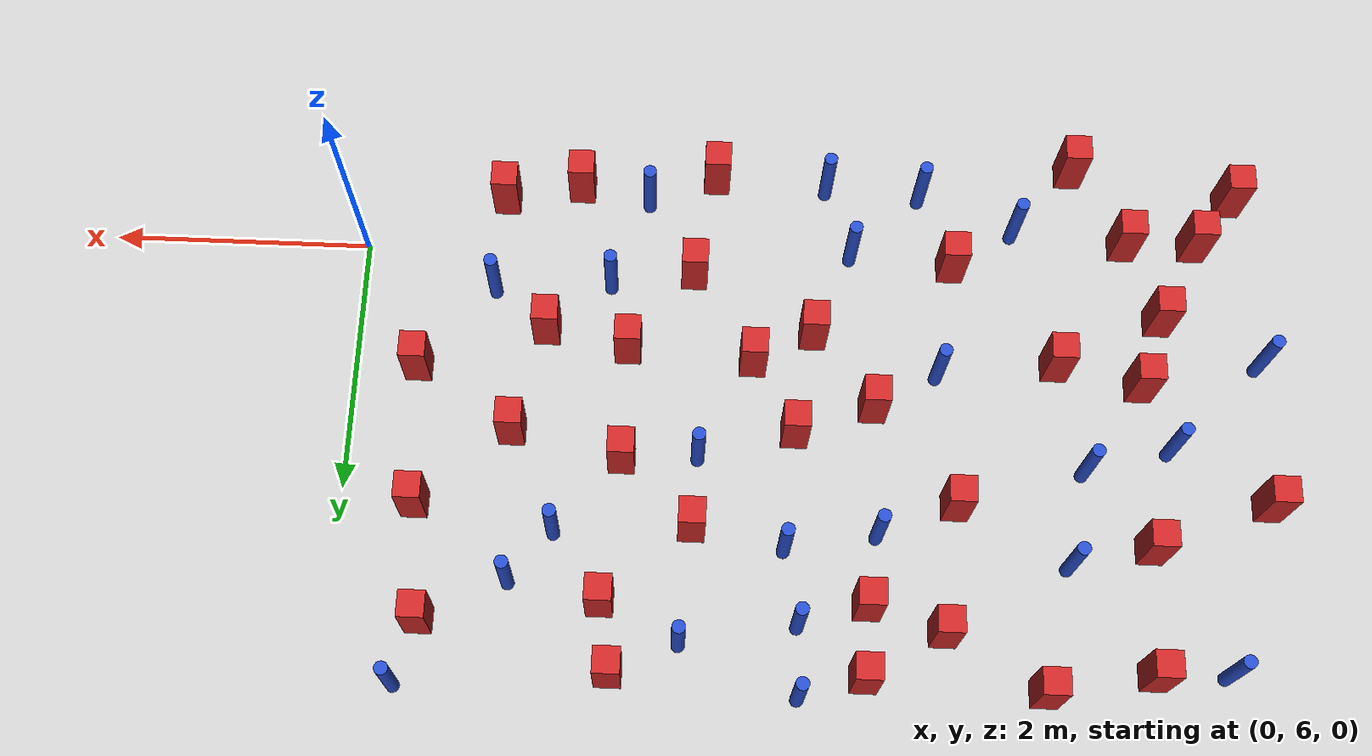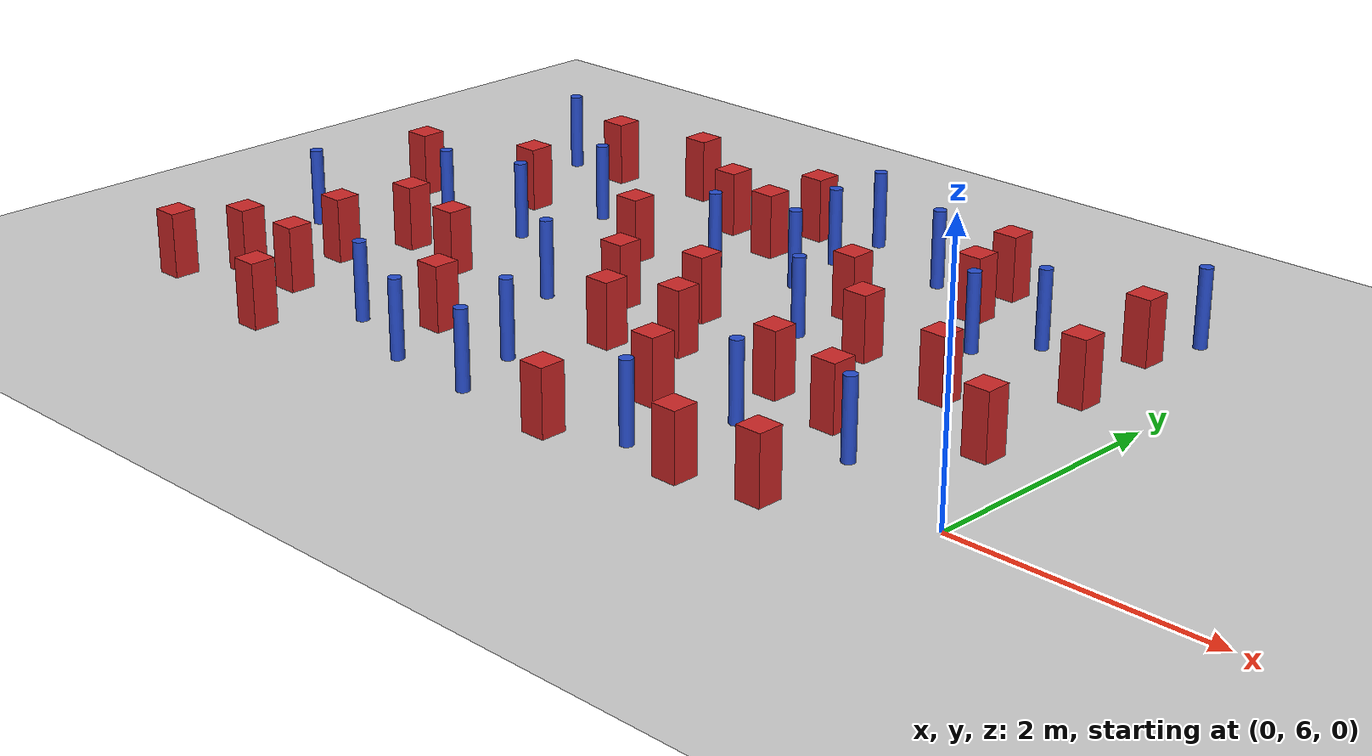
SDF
<sdf version="1.6">
 <world name="default">
  <model name="ground_plane">
   <static>1</static>
   <link name="link">
    <collision name="collision">
     <geometry><plane><normal>0 0 1</normal><size>100 100</size></plane></geometry>
     <surface><friction><ode><mu>100</mu><mu2>50</mu2></ode></friction></surface>
    </collision>
    <visual name="visual">
     <cast_shadows>0</cast_shadows>
     <geometry><plane><normal>0 0 1</normal><size>100 100</size></plane></geometry>
     <material>
      <ambient>1.0 1.0 1.0 1.0</ambient>
      <diffuse>0.8 0.8 0.8 1.0</diffuse>
      <specular>0.01 0.01 0.01 1.000000</specular>
     </material>
    </visual>
   </link>
  </model>
  <model name="square_post_obstacle1">
   <static>true</static>
   <pose>-3.93101011616 8.76190546787 -6.11067671241e-07 -5.50515727128e-06 -8.79689657224e-07 2.37013304536e-05</pose>
   <link name="link">
    <pose>0 0 0.25 0 -0 0</pose>
    <inertial>
     <mass>100</mass>
     <inertia>
      <ixx>0.166667</ixx>
      <ixy>0</ixy>
      <ixz>0</ixz>
      <iyy>0.166667</iyy>
      <iyz>0</iyz>
      <izz>0.166667</izz>
     </inertia>
    </inertial>
    <collision name="collision"><geometry><box><size>.2 .2 .5</size></box></geometry></collision>
    <visual name="visual">
     <geometry><box><size>.2 .2 .5</size></box></geometry>
     <material>
      <script><name>Gazebo/Red</name><uri>file://media/materials/scripts/gazebo.material</uri></script>
     </material>
    </visual>
   </link>
  </model>
  <model name="pole_obstacle9">
   <static>true</static>
   <pose>-3.79374008691 5.95631471667 -9.47619616065e-06 5.49618799738e-07 2.3631041406e-07 -1.55090534801e-07</pose>
   <link name="link">
    <pose>0 0 0.3 0 -0 0</pose>
    <inertial>
     <mass>1</mass>
     <inertia><ixx>0.145833</ixx><ixy>0</ixy><ixz>0</ixz><iyy>0.145833</iyy><iyz>0</iyz><izz>0.125</izz></inertia>
    </inertial>
    <collision name="collision">
     <geometry><cylinder><radius>0.05</radius><length>.6</length></cylinder></geometry>
    </collision>
    <visual name="visual">
     <geometry><cylinder><radius>0.05</radius><length>.6</length></cylinder></geometry>
     <material>
      <script><name>Gazebo/Blue</name><uri>file://media/materials/scripts/gazebo.material</uri></script>
     </material>
    </visual>
   </link>
  </model>
  <model name="square_post_obstacle15">
   <static>true</static>
   <pose>-2.06721331469 9.33534077176 -6.11067671241e-07 -5.50515727128e-06 -8.79689657224e-07 2.37013304536e-05</pose>
   <link name="link">
    <pose>0 0 0.25 0 -0 0</pose>
    <inertial>
     <mass>100</mass>
     <inertia>
      <ixx>0.166667</ixx>
      <ixy>0</ixy>
      <ixz>0</ixz>
      <iyy>0.166667</iyy>
      <iyz>0</iyz>
      <izz>0.166667</izz>
     </inertia>
    </inertial>
    <collision name="collision"><geometry><box><size>.2 .2 .5</size></box></geometry></collision>
    <visual name="visual">
     <geometry><box><size>.2 .2 .5</size></box></geometry>
     <material>
      <script><name>Gazebo/Red</name><uri>file://media/materials/scripts/gazebo.material</uri></script>
     </material>
    </visual>
   </link>
  </model>
  <model name="pole_obstacle34">
   <static>true</static>
   <pose>-1.29527328538 8.6920325481 -9.47619616065e-06 5.49618799737e-07 2.36310414046e-07 -1.55090534809e-07</pose>
   <link name="link">
    <pose>0 0 0.3 0 -0 0</pose>
    <inertial>
     <mass>1</mass>
     <inertia><ixx>0.145833</ixx><ixy>0</ixy><ixz>0</ixz><iyy>0.145833</iyy><iyz>0</iyz><izz>0.125</izz></inertia>
    </inertial>
    <collision name="collision">
     <geometry><cylinder><radius>0.05</radius><length>.6</length></cylinder></geometry>
    </collision>
    <visual name="visual">
     <geometry><cylinder><radius>0.05</radius><length>.6</length></cylinder></geometry>
     <material>
      <script><name>Gazebo/Blue</name><uri>file://media/materials/scripts/gazebo.material</uri></script>
     </material>
    </visual>
   </link>
  </model>
  <model name="square_post_obstacle29">
   <static>true</static>
   <pose>-3.5091988343 6.63039415746 -6.11067671241e-07 -5.50515727128e-06 -8.79689657224e-07 2.37013304536e-05</pose>
   <link name="link">
    <pose>0 0 0.25 0 -0 0</pose>
    <inertial>
     <mass>100</mass>
     <inertia>
      <ixx>0.166667</ixx>
      <ixy>0</ixy>
      <ixz>0</ixz>
      <iyy>0.166667</iyy>
      <iyz>0</iyz>
      <izz>0.166667</izz>
     </inertia>
    </inertial>
    <collision name="collision"><geometry><box><size>.2 .2 .5</size></box></geometry></collision>
    <visual name="visual">
     <geometry><box><size>.2 .2 .5</size></box></geometry>
     <material>
      <script><name>Gazebo/Red</name><uri>file://media/materials/scripts/gazebo.material</uri></script>
     </material>
    </visual>
   </link>
  </model>
  <model name="pole_obstacle40">
   <static>true</static>
   <pose>-6.19935487304 7.48095429086 -9.47619616065e-06 5.49618799737e-07 2.36310414037e-07 -1.55090534814e-07</pose>
   <link name="link">
    <pose>0 0 0.3 0 -0 0</pose>
    <inertial>
     <mass>1</mass>
     <inertia><ixx>0.145833</ixx><ixy>0</ixy><ixz>0</ixz><iyy>0.145833</iyy><iyz>0</iyz><izz>0.125</izz></inertia>
    </inertial>
    <collision name="collision">
     <geometry><cylinder><radius>0.05</radius><length>.6</length></cylinder></geometry>
    </collision>
    <visual name="visual">
     <geometry><cylinder><radius>0.05</radius><length>.6</length></cylinder></geometry>
     <material>
      <script><name>Gazebo/Blue</name><uri>file://media/materials/scripts/gazebo.material</uri></script>
     </material>
    </visual>
   </link>
  </model>
  <model name="pole_obstacle47">
   <static>true</static>
   <pose>-2.56440999447 9.10536468596 -9.4761961606e-06 5.49618799729e-07 2.36310414e-07 -1.55090534824e-07</pose>
   <link name="link">
    <pose>0 0 0.3 0 -0 0</pose>
    <inertial>
     <mass>1</mass>
     <inertia><ixx>0.145833</ixx><ixy>0</ixy><ixz>0</ixz><iyy>0.145833</iyy><iyz>0</iyz><izz>0.125</izz></inertia>
    </inertial>
    <collision name="collision">
     <geometry><cylinder><radius>0.05</radius><length>.6</length></cylinder></geometry>
    </collision>
    <visual name="visual">
     <geometry><cylinder><radius>0.05</radius><length>.6</length></cylinder></geometry>
     <material>
      <script><name>Gazebo/Blue</name><uri>file://media/materials/scripts/gazebo.material</uri></script>
     </material>
    </visual>
   </link>
  </model>
  <model name="square_post_obstacle39">
   <static>true</static>
   <pose>-6.79078821877 5.34065064978 -6.11067671241e-07 -5.50515727128e-06 -8.79689657224e-07 2.37013304536e-05</pose>
   <link name="link">
    <pose>0 0 0.25 0 -0 0</pose>
    <inertial>
     <mass>100</mass>
     <inertia>
      <ixx>0.166667</ixx>
      <ixy>0</ixy>
      <ixz>0</ixz>
      <iyy>0.166667</iyy>
      <iyz>0</iyz>
      <izz>0.166667</izz>
     </inertia>
    </inertial>
    <collision name="collision"><geometry><box><size>.2 .2 .5</size></box></geometry></collision>
    <visual name="visual">
     <geometry><box><size>.2 .2 .5</size></box></geometry>
     <material>
      <script><name>Gazebo/Red</name><uri>file://media/materials/scripts/gazebo.material</uri></script>
     </material>
    </visual>
   </link>
  </model>
  <model name="pole_obstacle51">
   <static>true</static>
   <pose>-1.60656359076 8.29880963765 -9.47619616065e-06 5.49618799737e-07 2.36310414046e-07 -1.55090534809e-07</pose>
   <link name="link">
    <pose>0 0 0.3 0 -0 0</pose>
    <inertial>
     <mass>1</mass>
     <inertia><ixx>0.145833</ixx><ixy>0</ixy><ixz>0</ixz><iyy>0.145833</iyy><iyz>0</iyz><izz>0.125</izz></inertia>
    </inertial>
    <collision name="collision">
     <geometry><cylinder><radius>0.05</radius><length>.6</length></cylinder></geometry>
    </collision>
    <visual name="visual">
     <geometry><cylinder><radius>0.05</radius><length>.6</length></cylinder></geometry>
     <material>
      <script><name>Gazebo/Blue</name><uri>file://media/materials/scripts/gazebo.material</uri></script>
     </material>
    </visual>
   </link>
  </model>
  <model name="pole_obstacle60">
   <static>true</static>
   <pose>-3.59758957852 5.37886061155 -9.4761961606e-06 5.49618799729e-07 2.36310414006e-07 -1.55090534822e-07</pose>
   <link name="link">
    <pose>0 0 0.3 0 -0 0</pose>
    <inertial>
     <mass>1</mass>
     <inertia><ixx>0.145833</ixx><ixy>0</ixy><ixz>0</ixz><iyy>0.145833</iyy><iyz>0</iyz><izz>0.125</izz></inertia>
    </inertial>
    <collision name="collision">
     <geometry><cylinder><radius>0.05</radius><length>.6</length></cylinder></geometry>
    </collision>
    <visual name="visual">
     <geometry><cylinder><radius>0.05</radius><length>.6</length></cylinder></geometry>
     <material>
      <script><name>Gazebo/Blue</name><uri>file://media/materials/scripts/gazebo.material</uri></script>
     </material>
    </visual>
   </link>
  </model>
  <model name="pole_obstacle61">
   <static>true</static>
   <pose>-0.523843270553 9.48377676943 -9.47619616065e-06 5.49618799737e-07 2.36310414028e-07 -1.55090534819e-07</pose>
   <link name="link">
    <pose>0 0 0.3 0 -0 0</pose>
    <inertial>
     <mass>1</mass>
     <inertia><ixx>0.145833</ixx><ixy>0</ixy><ixz>0</ixz><iyy>0.145833</iyy><iyz>0</iyz><izz>0.125</izz></inertia>
    </inertial>
    <collision name="collision">
     <geometry><cylinder><radius>0.05</radius><length>.6</length></cylinder></geometry>
    </collision>
    <visual name="visual">
     <geometry><cylinder><radius>0.05</radius><length>.6</length></cylinder></geometry>
     <material>
      <script><name>Gazebo/Blue</name><uri>file://media/materials/scripts/gazebo.material</uri></script>
     </material>
    </visual>
   </link>
  </model>
  <model name="square_post_obstacle49">
   <static>true</static>
   <pose>-2.73124747361 5.31073163933 -6.11067671241e-07 -5.50515727128e-06 -8.79689657224e-07 2.37013304536e-05</pose>
   <link name="link">
    <pose>0 0 0.25 0 -0 0</pose>
    <inertial>
     <mass>100</mass>
     <inertia>
      <ixx>0.166667</ixx>
      <ixy>0</ixy>
      <ixz>0</ixz>
      <iyy>0.166667</iyy>
      <iyz>0</iyz>
      <izz>0.166667</izz>
     </inertia>
    </inertial>
    <collision name="collision"><geometry><box><size>.2 .2 .5</size></box></geometry></collision>
    <visual name="visual">
     <geometry><box><size>.2 .2 .5</size></box></geometry>
     <material>
      <script><name>Gazebo/Red</name><uri>file://media/materials/scripts/gazebo.material</uri></script>
     </material>
    </visual>
   </link>
  </model>
  <model name="pole_obstacle63">
   <static>true</static>
   <pose>-6.91607063551 6.76198697087 -9.47619616065e-06 5.49618799737e-07 2.36310414037e-07 -1.55090534814e-07</pose>
   <link name="link">
    <pose>0 0 0.3 0 -0 0</pose>
    <inertial>
     <mass>1</mass>
     <inertia><ixx>0.145833</ixx><ixy>0</ixy><ixz>0</ixz><iyy>0.145833</iyy><iyz>0</iyz><izz>0.125</izz></inertia>
    </inertial>
    <collision name="collision">
     <geometry><cylinder><radius>0.05</radius><length>.6</length></cylinder></geometry>
    </collision>
    <visual name="visual">
     <geometry><cylinder><radius>0.05</radius><length>.6</length></cylinder></geometry>
     <material>
      <script><name>Gazebo/Blue</name><uri>file://media/materials/scripts/gazebo.material</uri></script>
     </material>
    </visual>
   </link>
  </model>
  <model name="square_post_obstacle62">
   <static>true</static>
   <pose>-6.91965950581 7.87558948765 -6.11067671241e-07 -5.50515727128e-06 -8.79689657224e-07 2.37013304536e-05</pose>
   <link name="link">
    <pose>0 0 0.25 0 -0 0</pose>
    <inertial>
     <mass>100</mass>
     <inertia>
      <ixx>0.166667</ixx>
      <ixy>0</ixy>
      <ixz>0</ixz>
      <iyy>0.166667</iyy>
      <iyz>0</iyz>
      <izz>0.166667</izz>
     </inertia>
    </inertial>
    <collision name="collision"><geometry><box><size>.2 .2 .5</size></box></geometry></collision>
    <visual name="visual">
     <geometry><box><size>.2 .2 .5</size></box></geometry>
     <material>
      <script><name>Gazebo/Red</name><uri>file://media/materials/scripts/gazebo.material</uri></script>
     </material>
    </visual>
   </link>
  </model>
  <model name="square_post_obstacle63">
   <static>true</static>
   <pose>-2.08791120888 7.70321835026 -6.11067671241e-07 -5.50515727128e-06 -8.79689657224e-07 2.37013304536e-05</pose>
   <link name="link">
    <pose>0 0 0.25 0 -0 0</pose>
    <inertial>
     <mass>100</mass>
     <inertia>
      <ixx>0.166667</ixx>
      <ixy>0</ixy>
      <ixz>0</ixz>
      <iyy>0.166667</iyy>
      <iyz>0</iyz>
      <izz>0.166667</izz>
     </inertia>
    </inertial>
    <collision name="collision"><geometry><box><size>.2 .2 .5</size></box></geometry></collision>
    <visual name="visual">
     <geometry><box><size>.2 .2 .5</size></box></geometry>
     <material>
      <script><name>Gazebo/Red</name><uri>file://media/materials/scripts/gazebo.material</uri></script>
     </material>
    </visual>
   </link>
  </model>
  <model name="pole_obstacle75">
   <static>true</static>
   <pose>-5.06561801735 5.70511838467 -9.47619616065e-06 5.49618799737e-07 2.36310414037e-07 -1.55090534814e-07</pose>
   <link name="link">
    <pose>0 0 0.3 0 -0 0</pose>
    <inertial>
     <mass>1</mass>
     <inertia><ixx>0.145833</ixx><ixy>0</ixy><ixz>0</ixz><iyy>0.145833</iyy><iyz>0</iyz><izz>0.125</izz></inertia>
    </inertial>
    <collision name="collision">
     <geometry><cylinder><radius>0.05</radius><length>.6</length></cylinder></geometry>
    </collision>
    <visual name="visual">
     <geometry><cylinder><radius>0.05</radius><length>.6</length></cylinder></geometry>
     <material>
      <script><name>Gazebo/Blue</name><uri>file://media/materials/scripts/gazebo.material</uri></script>
     </material>
    </visual>
   </link>
  </model>
  <model name="pole_obstacle76">
   <static>true</static>
   <pose>-4.45757789082 6.93720662528 -9.47619616065e-06 5.49618799737e-07 2.36310414037e-07 -1.55090534814e-07</pose>
   <link name="link">
    <pose>0 0 0.3 0 -0 0</pose>
    <inertial>
     <mass>1</mass>
     <inertia><ixx>0.145833</ixx><ixy>0</ixy><ixz>0</ixz><iyy>0.145833</iyy><iyz>0</iyz><izz>0.125</izz></inertia>
    </inertial>
    <collision name="collision">
     <geometry><cylinder><radius>0.05</radius><length>.6</length></cylinder></geometry>
    </collision>
    <visual name="visual">
     <geometry><cylinder><radius>0.05</radius><length>.6</length></cylinder></geometry>
     <material>
      <script><name>Gazebo/Blue</name><uri>file://media/materials/scripts/gazebo.material</uri></script>
     </material>
    </visual>
   </link>
  </model>
  <model name="pole_obstacle78">
   <static>true</static>
   <pose>-4.33369580763 5.42312579142 -9.47619616065e-06 5.49618799737e-07 2.36310414037e-07 -1.55090534814e-07</pose>
   <link name="link">
    <pose>0 0 0.3 0 -0 0</pose>
    <inertial>
     <mass>1</mass>
     <inertia><ixx>0.145833</ixx><ixy>0</ixy><ixz>0</ixz><iyy>0.145833</iyy><iyz>0</iyz><izz>0.125</izz></inertia>
    </inertial>
    <collision name="collision">
     <geometry><cylinder><radius>0.05</radius><length>.6</length></cylinder></geometry>
    </collision>
    <visual name="visual">
     <geometry><cylinder><radius>0.05</radius><length>.6</length></cylinder></geometry>
     <material>
      <script><name>Gazebo/Blue</name><uri>file://media/materials/scripts/gazebo.material</uri></script>
     </material>
    </visual>
   </link>
  </model>
  <model name="pole_obstacle80">
   <static>true</static>
   <pose>-2.65790835532 7.67264745156 -9.47619616065e-06 5.49618799738e-07 2.3631041406e-07 -1.55090534801e-07</pose>
   <link name="link">
    <pose>0 0 0.3 0 -0 0</pose>
    <inertial>
     <mass>1</mass>
     <inertia><ixx>0.145833</ixx><ixy>0</ixy><ixz>0</ixz><iyy>0.145833</iyy><iyz>0</iyz><izz>0.125</izz></inertia>
    </inertial>
    <collision name="collision">
     <geometry><cylinder><radius>0.05</radius><length>.6</length></cylinder></geometry>
    </collision>
    <visual name="visual">
     <geometry><cylinder><radius>0.05</radius><length>.6</length></cylinder></geometry>
     <material>
      <script><name>Gazebo/Blue</name><uri>file://media/materials/scripts/gazebo.material</uri></script>
     </material>
    </visual>
   </link>
  </model>
  <model name="pole_obstacle89">
   <static>true</static>
   <pose>-4.00031937842 8.23350062503 -9.47619616065e-06 5.49618799737e-07 2.36310414065e-07 -1.55090534796e-07</pose>
   <link name="link">
    <pose>0 0 0.3 0 -0 0</pose>
    <inertial>
     <mass>1</mass>
     <inertia><ixx>0.145833</ixx><ixy>0</ixy><ixz>0</ixz><iyy>0.145833</iyy><iyz>0</iyz><izz>0.125</izz></inertia>
    </inertial>
    <collision name="collision">
     <geometry><cylinder><radius>0.05</radius><length>.6</length></cylinder></geometry>
    </collision>
    <visual name="visual">
     <geometry><cylinder><radius>0.05</radius><length>.6</length></cylinder></geometry>
     <material>
      <script><name>Gazebo/Blue</name><uri>file://media/materials/scripts/gazebo.material</uri></script>
     </material>
    </visual>
   </link>
  </model>
  <model name="square_post_obstacle84">
   <static>true</static>
   <pose>-6.48567346125 5.75032184256 -6.11067671241e-07 -5.50515727128e-06 -8.79689657224e-07 2.37013304536e-05</pose>
   <link name="link">
    <pose>0 0 0.25 0 -0 0</pose>
    <inertial>
     <mass>100</mass>
     <inertia>
      <ixx>0.166667</ixx>
      <ixy>0</ixy>
      <ixz>0</ixz>
      <iyy>0.166667</iyy>
      <iyz>0</iyz>
      <izz>0.166667</izz>
     </inertia>
    </inertial>
    <collision name="collision"><geometry><box><size>.2 .2 .5</size></box></geometry></collision>
    <visual name="visual">
     <geometry><box><size>.2 .2 .5</size></box></geometry>
     <material>
      <script><name>Gazebo/Red</name><uri>file://media/materials/scripts/gazebo.material</uri></script>
     </material>
    </visual>
   </link>
  </model>
  <model name="square_post_obstacle89">
   <static>true</static>
   <pose>-2.6293624798 8.2164045874 -6.11067671241e-07 -5.50515727128e-06 -8.79689657224e-07 2.37013304536e-05</pose>
   <link name="link">
    <pose>0 0 0.25 0 -0 0</pose>
    <inertial>
     <mass>100</mass>
     <inertia>
      <ixx>0.166667</ixx>
      <ixy>0</ixy>
      <ixz>0</ixz>
      <iyy>0.166667</iyy>
      <iyz>0</iyz>
      <izz>0.166667</izz>
     </inertia>
    </inertial>
    <collision name="collision"><geometry><box><size>.2 .2 .5</size></box></geometry></collision>
    <visual name="visual">
     <geometry><box><size>.2 .2 .5</size></box></geometry>
     <material>
      <script><name>Gazebo/Red</name><uri>file://media/materials/scripts/gazebo.material</uri></script>
     </material>
    </visual>
   </link>
  </model>
  <model name="square_post_obstacle98">
   <static>true</static>
   <pose>-4.48244091897 8.93773082074 -6.11067671241e-07 -5.50515727128e-06 -8.79689657224e-07 2.37013304536e-05</pose>
   <link name="link">
    <pose>0 0 0.25 0 -0 0</pose>
    <inertial>
     <mass>100</mass>
     <inertia>
      <ixx>0.166667</ixx>
      <ixy>0</ixy>
      <ixz>0</ixz>
      <iyy>0.166667</iyy>
      <iyz>0</iyz>
      <izz>0.166667</izz>
     </inertia>
    </inertial>
    <collision name="collision"><geometry><box><size>.2 .2 .5</size></box></geometry></collision>
    <visual name="visual">
     <geometry><box><size>.2 .2 .5</size></box></geometry>
     <material>
      <script><name>Gazebo/Red</name><uri>file://media/materials/scripts/gazebo.material</uri></script>
     </material>
    </visual>
   </link>
  </model>
  <model name="square_post_obstacle101">
   <static>true</static>
   <pose>-6.0249009246 8.24527640478 -6.11067671241e-07 -5.50515727128e-06 -8.79689657224e-07 2.37013304536e-05</pose>
   <link name="link">
    <pose>0 0 0.25 0 -0 0</pose>
    <inertial>
     <mass>100</mass>
     <inertia>
      <ixx>0.166667</ixx>
      <ixy>0</ixy>
      <ixz>0</ixz>
      <iyy>0.166667</iyy>
      <iyz>0</iyz>
      <izz>0.166667</izz>
     </inertia>
    </inertial>
    <collision name="collision"><geometry><box><size>.2 .2 .5</size></box></geometry></collision>
    <visual name="visual">
     <geometry><box><size>.2 .2 .5</size></box></geometry>
     <material>
      <script><name>Gazebo/Red</name><uri>file://media/materials/scripts/gazebo.material</uri></script>
     </material>
    </visual>
   </link>
  </model>
  <model name="square_post_obstacle102">
   <static>true</static>
   <pose>-1.46179817074 6.67234186855 -6.11067671241e-07 -5.50515727128e-06 -8.79689657224e-07 2.37013304536e-05</pose>
   <link name="link">
    <pose>0 0 0.25 0 -0 0</pose>
    <inertial>
     <mass>100</mass>
     <inertia>
      <ixx>0.166667</ixx>
      <ixy>0</ixy>
      <ixz>0</ixz>
      <iyy>0.166667</iyy>
      <iyz>0</iyz>
      <izz>0.166667</izz>
     </inertia>
    </inertial>
    <collision name="collision"><geometry><box><size>.2 .2 .5</size></box></geometry></collision>
    <visual name="visual">
     <geometry><box><size>.2 .2 .5</size></box></geometry>
     <material>
      <script><name>Gazebo/Red</name><uri>file://media/materials/scripts/gazebo.material</uri></script>
     </material>
    </visual>
   </link>
  </model>
  <model name="pole_obstacle109">
   <static>true</static>
   <pose>-5.40837130879 8.41540186259 -9.47619616065e-06 5.49618799737e-07 2.36310414065e-07 -1.55090534796e-07</pose>
   <link name="link">
    <pose>0 0 0.3 0 -0 0</pose>
    <inertial>
     <mass>1</mass>
     <inertia><ixx>0.145833</ixx><ixy>0</ixy><ixz>0</ixz><iyy>0.145833</iyy><iyz>0</iyz><izz>0.125</izz></inertia>
    </inertial>
    <collision name="collision">
     <geometry><cylinder><radius>0.05</radius><length>.6</length></cylinder></geometry>
    </collision>
    <visual name="visual">
     <geometry><cylinder><radius>0.05</radius><length>.6</length></cylinder></geometry>
     <material>
      <script><name>Gazebo/Blue</name><uri>file://media/materials/scripts/gazebo.material</uri></script>
     </material>
    </visual>
   </link>
  </model>
  <model name="square_post_obstacle108">
   <static>true</static>
   <pose>-3.38045916165 7.44335587176 -6.11067671241e-07 -5.50515727128e-06 -8.79689657224e-07 2.37013304536e-05</pose>
   <link name="link">
    <pose>0 0 0.25 0 -0 0</pose>
    <inertial>
     <mass>100</mass>
     <inertia>
      <ixx>0.166667</ixx>
      <ixy>0</ixy>
      <ixz>0</ixz>
      <iyy>0.166667</iyy>
      <iyz>0</iyz>
      <izz>0.166667</izz>
     </inertia>
    </inertial>
    <collision name="collision"><geometry><box><size>.2 .2 .5</size></box></geometry></collision>
    <visual name="visual">
     <geometry><box><size>.2 .2 .5</size></box></geometry>
     <material>
      <script><name>Gazebo/Red</name><uri>file://media/materials/scripts/gazebo.material</uri></script>
     </material>
    </visual>
   </link>
  </model>
  <model name="square_post_obstacle111">
   <static>true</static>
   <pose>-2.58143958403 6.15483560474 -6.11067671241e-07 -5.50515727128e-06 -8.79689657224e-07 2.37013304536e-05</pose>
   <link name="link">
    <pose>0 0 0.25 0 -0 0</pose>
    <inertial>
     <mass>100</mass>
     <inertia>
      <ixx>0.166667</ixx>
      <ixy>0</ixy>
      <ixz>0</ixz>
      <iyy>0.166667</iyy>
      <iyz>0</iyz>
      <izz>0.166667</izz>
     </inertia>
    </inertial>
    <collision name="collision"><geometry><box><size>.2 .2 .5</size></box></geometry></collision>
    <visual name="visual">
     <geometry><box><size>.2 .2 .5</size></box></geometry>
     <material>
      <script><name>Gazebo/Red</name><uri>file://media/materials/scripts/gazebo.material</uri></script>
     </material>
    </visual>
   </link>
  </model>
  <model name="square_post_obstacle112">
   <static>true</static>
   <pose>-0.669799356321 8.9944673139 -6.11067671241e-07 -5.50515727128e-06 -8.79689657224e-07 2.37013304536e-05</pose>
   <link name="link">
    <pose>0 0 0.25 0 -0 0</pose>
    <inertial>
     <mass>100</mass>
     <inertia>
      <ixx>0.166667</ixx>
      <ixy>0</ixy>
      <ixz>0</ixz>
      <iyy>0.166667</iyy>
      <iyz>0</iyz>
      <izz>0.166667</izz>
     </inertia>
    </inertial>
    <collision name="collision"><geometry><box><size>.2 .2 .5</size></box></geometry></collision>
    <visual name="visual">
     <geometry><box><size>.2 .2 .5</size></box></geometry>
     <material>
      <script><name>Gazebo/Red</name><uri>file://media/materials/scripts/gazebo.material</uri></script>
     </material>
    </visual>
   </link>
  </model>
  <model name="square_post_obstacle113">
   <static>true</static>
   <pose>-3.9069270397 9.29875326937 -6.11067671241e-07 -5.50515727128e-06 -8.79689657224e-07 2.37013304536e-05</pose>
   <link name="link">
    <pose>0 0 0.25 0 -0 0</pose>
    <inertial>
     <mass>100</mass>
     <inertia>
      <ixx>0.166667</ixx>
      <ixy>0</ixy>
      <ixz>0</ixz>
      <iyy>0.166667</iyy>
      <iyz>0</iyz>
      <izz>0.166667</izz>
     </inertia>
    </inertial>
    <collision name="collision"><geometry><box><size>.2 .2 .5</size></box></geometry></collision>
    <visual name="visual">
     <geometry><box><size>.2 .2 .5</size></box></geometry>
     <material>
      <script><name>Gazebo/Red</name><uri>file://media/materials/scripts/gazebo.material</uri></script>
     </material>
    </visual>
   </link>
  </model>
  <model name="square_post_obstacle117">
   <static>true</static>
   <pose>-4.58518394033 7.97008042674 -6.11067671241e-07 -5.50515727128e-06 -8.79689657224e-07 2.37013304536e-05</pose>
   <link name="link">
    <pose>0 0 0.25 0 -0 0</pose>
    <inertial>
     <mass>100</mass>
     <inertia>
      <ixx>0.166667</ixx>
      <ixy>0</ixy>
      <ixz>0</ixz>
      <iyy>0.166667</iyy>
      <iyz>0</iyz>
      <izz>0.166667</izz>
     </inertia>
    </inertial>
    <collision name="collision"><geometry><box><size>.2 .2 .5</size></box></geometry></collision>
    <visual name="visual">
     <geometry><box><size>.2 .2 .5</size></box></geometry>
     <material>
      <script><name>Gazebo/Red</name><uri>file://media/materials/scripts/gazebo.material</uri></script>
     </material>
    </visual>
   </link>
  </model>
  <model name="pole_obstacle126">
   <static>true</static>
   <pose>-5.54769115928 7.67533644168 -9.47619616065e-06 5.49618799737e-07 2.36310414037e-07 -1.55090534814e-07</pose>
   <link name="link">
    <pose>0 0 0.3 0 -0 0</pose>
    <inertial>
     <mass>1</mass>
     <inertia><ixx>0.145833</ixx><ixy>0</ixy><ixz>0</ixz><iyy>0.145833</iyy><iyz>0</iyz><izz>0.125</izz></inertia>
    </inertial>
    <collision name="collision">
     <geometry><cylinder><radius>0.05</radius><length>.6</length></cylinder></geometry>
    </collision>
    <visual name="visual">
     <geometry><cylinder><radius>0.05</radius><length>.6</length></cylinder></geometry>
     <material>
      <script><name>Gazebo/Blue</name><uri>file://media/materials/scripts/gazebo.material</uri></script>
     </material>
    </visual>
   </link>
  </model>
  <model name="square_post_obstacle122">
   <static>true</static>
   <pose>-4.57949910107 6.01020596055 -6.11067671241e-07 -5.50515727128e-06 -8.79689657224e-07 2.37013304536e-05</pose>
   <link name="link">
    <pose>0 0 0.25 0 -0 0</pose>
    <inertial>
     <mass>100</mass>
     <inertia>
      <ixx>0.166667</ixx>
      <ixy>0</ixy>
      <ixz>0</ixz>
      <iyy>0.166667</iyy>
      <iyz>0</iyz>
      <izz>0.166667</izz>
     </inertia>
    </inertial>
    <collision name="collision"><geometry><box><size>.2 .2 .5</size></box></geometry></collision>
    <visual name="visual">
     <geometry><box><size>.2 .2 .5</size></box></geometry>
     <material>
      <script><name>Gazebo/Red</name><uri>file://media/materials/scripts/gazebo.material</uri></script>
     </material>
    </visual>
   </link>
  </model>
  <model name="square_post_obstacle125">
   <static>true</static>
   <pose>-3.05299228096 6.87342144964 -6.11067671241e-07 -5.50515727128e-06 -8.79689657224e-07 2.37013304536e-05</pose>
   <link name="link">
    <pose>0 0 0.25 0 -0 0</pose>
    <inertial>
     <mass>100</mass>
     <inertia>
      <ixx>0.166667</ixx>
      <ixy>0</ixy>
      <ixz>0</ixz>
      <iyy>0.166667</iyy>
      <iyz>0</iyz>
      <izz>0.166667</izz>
     </inertia>
    </inertial>
    <collision name="collision"><geometry><box><size>.2 .2 .5</size></box></geometry></collision>
    <visual name="visual">
     <geometry><box><size>.2 .2 .5</size></box></geometry>
     <material>
      <script><name>Gazebo/Red</name><uri>file://media/materials/scripts/gazebo.material</uri></script>
     </material>
    </visual>
   </link>
  </model>
  <model name="pole_obstacle131">
   <static>true</static>
   <pose>-2.20640793183 5.54849505962 -9.47619616065e-06 5.49618799738e-07 2.3631041406e-07 -1.55090534801e-07</pose>
   <link name="link">
    <pose>0 0 0.3 0 -0 0</pose>
    <inertial>
     <mass>1</mass>
     <inertia><ixx>0.145833</ixx><ixy>0</ixy><ixz>0</ixz><iyy>0.145833</iyy><iyz>0</iyz><izz>0.125</izz></inertia>
    </inertial>
    <collision name="collision">
     <geometry><cylinder><radius>0.05</radius><length>.6</length></cylinder></geometry>
    </collision>
    <visual name="visual">
     <geometry><cylinder><radius>0.05</radius><length>.6</length></cylinder></geometry>
     <material>
      <script><name>Gazebo/Blue</name><uri>file://media/materials/scripts/gazebo.material</uri></script>
     </material>
    </visual>
   </link>
  </model>
  <model name="square_post_obstacle132">
   <static>true</static>
   <pose>-5.36635743751 6.81545489523 -6.11067671241e-07 -5.50515727128e-06 -8.79689657224e-07 2.37013304536e-05</pose>
   <link name="link">
    <pose>0 0 0.25 0 -0 0</pose>
    <inertial>
     <mass>100</mass>
     <inertia>
      <ixx>0.166667</ixx>
      <ixy>0</ixy>
      <ixz>0</ixz>
      <iyy>0.166667</iyy>
      <iyz>0</iyz>
      <izz>0.166667</izz>
     </inertia>
    </inertial>
    <collision name="collision"><geometry><box><size>.2 .2 .5</size></box></geometry></collision>
    <visual name="visual">
     <geometry><box><size>.2 .2 .5</size></box></geometry>
     <material>
      <script><name>Gazebo/Red</name><uri>file://media/materials/scripts/gazebo.material</uri></script>
     </material>
    </visual>
   </link>
  </model>
  <model name="pole_obstacle138">
   <static>true</static>
   <pose>-3.42361335266 8.93778349776 -9.4761961606e-06 5.49618799729e-07 2.36310414e-07 -1.55090534824e-07</pose>
   <link name="link">
    <pose>0 0 0.3 0 -0 0</pose>
    <inertial>
     <mass>1</mass>
     <inertia><ixx>0.145833</ixx><ixy>0</ixy><ixz>0</ixz><iyy>0.145833</iyy><iyz>0</iyz><izz>0.125</izz></inertia>
    </inertial>
    <collision name="collision">
     <geometry><cylinder><radius>0.05</radius><length>.6</length></cylinder></geometry>
    </collision>
    <visual name="visual">
     <geometry><cylinder><radius>0.05</radius><length>.6</length></cylinder></geometry>
     <material>
      <script><name>Gazebo/Blue</name><uri>file://media/materials/scripts/gazebo.material</uri></script>
     </material>
    </visual>
   </link>
  </model>
  <model name="square_post_obstacle137">
   <static>true</static>
   <pose>-1.24780806272 7.51010513613 -6.11067671241e-07 -5.50515727128e-06 -8.79689657224e-07 2.37013304536e-05</pose>
   <link name="link">
    <pose>0 0 0.25 0 -0 0</pose>
    <inertial>
     <mass>100</mass>
     <inertia>
      <ixx>0.166667</ixx>
      <ixy>0</ixy>
      <ixz>0</ixz>
      <iyy>0.166667</iyy>
      <iyz>0</iyz>
      <izz>0.166667</izz>
     </inertia>
    </inertial>
    <collision name="collision"><geometry><box><size>.2 .2 .5</size></box></geometry></collision>
    <visual name="visual">
     <geometry><box><size>.2 .2 .5</size></box></geometry>
     <material>
      <script><name>Gazebo/Red</name><uri>file://media/materials/scripts/gazebo.material</uri></script>
     </material>
    </visual>
   </link>
  </model>
  <model name="pole_obstacle149">
   <static>true</static>
   <pose>-6.51806233034 9.17999122547 -9.47619616065e-06 5.49618799737e-07 2.36310414065e-07 -1.55090534796e-07</pose>
   <link name="link">
    <pose>0 0 0.3 0 -0 0</pose>
    <inertial>
     <mass>1</mass>
     <inertia><ixx>0.145833</ixx><ixy>0</ixy><ixz>0</ixz><iyy>0.145833</iyy><iyz>0</iyz><izz>0.125</izz></inertia>
    </inertial>
    <collision name="collision">
     <geometry><cylinder><radius>0.05</radius><length>.6</length></cylinder></geometry>
    </collision>
    <visual name="visual">
     <geometry><cylinder><radius>0.05</radius><length>.6</length></cylinder></geometry>
     <material>
      <script><name>Gazebo/Blue</name><uri>file://media/materials/scripts/gazebo.material</uri></script>
     </material>
    </visual>
   </link>
  </model>
  <model name="pole_obstacle151">
   <static>true</static>
   <pose>-3.43163065489 9.46548642131 -9.47619616065e-06 5.49618799738e-07 2.36310414059e-07 -1.55090534802e-07</pose>
   <link name="link">
    <pose>0 0 0.3 0 -0 0</pose>
    <inertial>
     <mass>1</mass>
     <inertia><ixx>0.145833</ixx><ixy>0</ixy><ixz>0</ixz><iyy>0.145833</iyy><iyz>0</iyz><izz>0.125</izz></inertia>
    </inertial>
    <collision name="collision">
     <geometry><cylinder><radius>0.05</radius><length>.6</length></cylinder></geometry>
    </collision>
    <visual name="visual">
     <geometry><cylinder><radius>0.05</radius><length>.6</length></cylinder></geometry>
     <material>
      <script><name>Gazebo/Blue</name><uri>file://media/materials/scripts/gazebo.material</uri></script>
     </material>
    </visual>
   </link>
  </model>
  <model name="square_post_obstacle148">
   <static>true</static>
   <pose>-5.20411261855 9.34885970369 -6.11067671241e-07 -5.50515727128e-06 -8.79689657224e-07 2.37013304536e-05</pose>
   <link name="link">
    <pose>0 0 0.25 0 -0 0</pose>
    <inertial>
     <mass>100</mass>
     <inertia>
      <ixx>0.166667</ixx>
      <ixy>0</ixy>
      <ixz>0</ixz>
      <iyy>0.166667</iyy>
      <iyz>0</iyz>
      <izz>0.166667</izz>
     </inertia>
    </inertial>
    <collision name="collision"><geometry><box><size>.2 .2 .5</size></box></geometry></collision>
    <visual name="visual">
     <geometry><box><size>.2 .2 .5</size></box></geometry>
     <material>
      <script><name>Gazebo/Red</name><uri>file://media/materials/scripts/gazebo.material</uri></script>
     </material>
    </visual>
   </link>
  </model>
  <model name="pole_obstacle153">
   <static>true</static>
   <pose>-1.03808503379 6.34891315979 -9.47619616065e-06 5.49618799737e-07 2.36310414062e-07 -1.55090534799e-07</pose>
   <link name="link">
    <pose>0 0 0.3 0 -0 0</pose>
    <inertial>
     <mass>1</mass>
     <inertia><ixx>0.145833</ixx><ixy>0</ixy><ixz>0</ixz><iyy>0.145833</iyy><iyz>0</iyz><izz>0.125</izz></inertia>
    </inertial>
    <collision name="collision">
     <geometry><cylinder><radius>0.05</radius><length>.6</length></cylinder></geometry>
    </collision>
    <visual name="visual">
     <geometry><cylinder><radius>0.05</radius><length>.6</length></cylinder></geometry>
     <material>
      <script><name>Gazebo/Blue</name><uri>file://media/materials/scripts/gazebo.material</uri></script>
     </material>
    </visual>
   </link>
  </model>
  <model name="square_post_obstacle152">
   <static>true</static>
   <pose>-2.09395035175 6.80698452213 -6.11067671241e-07 -5.50515727128e-06 -8.79689657224e-07 2.37013304536e-05</pose>
   <link name="link">
    <pose>0 0 0.25 0 -0 0</pose>
    <inertial>
     <mass>100</mass>
     <inertia>
      <ixx>0.166667</ixx>
      <ixy>0</ixy>
      <ixz>0</ixz>
      <iyy>0.166667</iyy>
      <iyz>0</iyz>
      <izz>0.166667</izz>
     </inertia>
    </inertial>
    <collision name="collision"><geometry><box><size>.2 .2 .5</size></box></geometry></collision>
    <visual name="visual">
     <geometry><box><size>.2 .2 .5</size></box></geometry>
     <material>
      <script><name>Gazebo/Red</name><uri>file://media/materials/scripts/gazebo.material</uri></script>
     </material>
    </visual>
   </link>
  </model>
  <model name="square_post_obstacle164">
   <static>true</static>
   <pose>-6.17891622707 6.40243777633 -6.11067671241e-07 -5.50515727128e-06 -8.79689657224e-07 2.37013304536e-05</pose>
   <link name="link">
    <pose>0 0 0.25 0 -0 0</pose>
    <inertial>
     <mass>100</mass>
     <inertia>
      <ixx>0.166667</ixx>
      <ixy>0</ixy>
      <ixz>0</ixz>
      <iyy>0.166667</iyy>
      <iyz>0</iyz>
      <izz>0.166667</izz>
     </inertia>
    </inertial>
    <collision name="collision"><geometry><box><size>.2 .2 .5</size></box></geometry></collision>
    <visual name="visual">
     <geometry><box><size>.2 .2 .5</size></box></geometry>
     <material>
      <script><name>Gazebo/Red</name><uri>file://media/materials/scripts/gazebo.material</uri></script>
     </material>
    </visual>
   </link>
  </model>
  <model name="pole_obstacle173">
   <static>true</static>
   <pose>-3.31534238196 8.3650974964 -9.4761961606e-06 5.49618799729e-07 2.36310414e-07 -1.55090534824e-07</pose>
   <link name="link">
    <pose>0 0 0.3 0 -0 0</pose>
    <inertial>
     <mass>1</mass>
     <inertia><ixx>0.145833</ixx><ixy>0</ixy><ixz>0</ixz><iyy>0.145833</iyy><iyz>0</iyz><izz>0.125</izz></inertia>
    </inertial>
    <collision name="collision">
     <geometry><cylinder><radius>0.05</radius><length>.6</length></cylinder></geometry>
    </collision>
    <visual name="visual">
     <geometry><cylinder><radius>0.05</radius><length>.6</length></cylinder></geometry>
     <material>
      <script><name>Gazebo/Blue</name><uri>file://media/materials/scripts/gazebo.material</uri></script>
     </material>
    </visual>
   </link>
  </model>
  <model name="pole_obstacle176">
   <static>true</static>
   <pose>-1.93856029199 6.27723420412 -9.47619616065e-06 5.49618799737e-07 2.36310414061e-07 -1.550905348e-07</pose>
   <link name="link">
    <pose>0 0 0.3 0 -0 0</pose>
    <inertial>
     <mass>1</mass>
     <inertia><ixx>0.145833</ixx><ixy>0</ixy><ixz>0</ixz><iyy>0.145833</iyy><iyz>0</iyz><izz>0.125</izz></inertia>
    </inertial>
    <collision name="collision">
     <geometry><cylinder><radius>0.05</radius><length>.6</length></cylinder></geometry>
    </collision>
    <visual name="visual">
     <geometry><cylinder><radius>0.05</radius><length>.6</length></cylinder></geometry>
     <material>
      <script><name>Gazebo/Blue</name><uri>file://media/materials/scripts/gazebo.material</uri></script>
     </material>
    </visual>
   </link>
  </model>
  <model name="square_post_obstacle180">
   <static>true</static>
   <pose>-0.559718276186 8.11490499076 -6.11067671241e-07 -5.50515727128e-06 -8.79689657224e-07 2.37013304536e-05</pose>
   <link name="link">
    <pose>0 0 0.25 0 -0 0</pose>
    <inertial>
     <mass>100</mass>
     <inertia>
      <ixx>0.166667</ixx>
      <ixy>0</ixy>
      <ixz>0</ixz>
      <iyy>0.166667</iyy>
      <iyz>0</iyz>
      <izz>0.166667</izz>
     </inertia>
    </inertial>
    <collision name="collision"><geometry><box><size>.2 .2 .5</size></box></geometry></collision>
    <visual name="visual">
     <geometry><box><size>.2 .2 .5</size></box></geometry>
     <material>
      <script><name>Gazebo/Red</name><uri>file://media/materials/scripts/gazebo.material</uri></script>
     </material>
    </visual>
   </link>
  </model>
  <model name="square_post_obstacle188">
   <static>true</static>
   <pose>-3.97107666223 7.21498787063 -6.11067671241e-07 -5.50515727128e-06 -8.79689657224e-07 2.37013304536e-05</pose>
   <link name="link">
    <pose>0 0 0.25 0 -0 0</pose>
    <inertial>
     <mass>100</mass>
     <inertia>
      <ixx>0.166667</ixx>
      <ixy>0</ixy>
      <ixz>0</ixz>
      <iyy>0.166667</iyy>
      <iyz>0</iyz>
      <izz>0.166667</izz>
     </inertia>
    </inertial>
    <collision name="collision"><geometry><box><size>.2 .2 .5</size></box></geometry></collision>
    <visual name="visual">
     <geometry><box><size>.2 .2 .5</size></box></geometry>
     <material>
      <script><name>Gazebo/Red</name><uri>file://media/materials/scripts/gazebo.material</uri></script>
     </material>
    </visual>
   </link>
  </model>
  <model name="square_post_obstacle189">
   <static>true</static>
   <pose>-6.00660766819 6.95806387809 -6.11067671241e-07 -5.50515727128e-06 -8.79689657224e-07 2.37013304536e-05</pose>
   <link name="link">
    <pose>0 0 0.25 0 -0 0</pose>
    <inertial>
     <mass>100</mass>
     <inertia>
      <ixx>0.166667</ixx>
      <ixy>0</ixy>
      <ixz>0</ixz>
      <iyy>0.166667</iyy>
      <iyz>0</iyz>
      <izz>0.166667</izz>
     </inertia>
    </inertial>
    <collision name="collision"><geometry><box><size>.2 .2 .5</size></box></geometry></collision>
    <visual name="visual">
     <geometry><box><size>.2 .2 .5</size></box></geometry>
     <material>
      <script><name>Gazebo/Red</name><uri>file://media/materials/scripts/gazebo.material</uri></script>
     </material>
    </visual>
   </link>
  </model>
  <model name="square_post_obstacle202">
   <static>true</static>
   <pose>-0.493531499114 7.0139995699 -6.11067671241e-07 -5.50515727128e-06 -8.79689657224e-07 2.37013304536e-05</pose>
   <link name="link">
    <pose>0 0 0.25 0 -0 0</pose>
    <inertial>
     <mass>100</mass>
     <inertia>
      <ixx>0.166667</ixx>
      <ixy>0</ixy>
      <ixz>0</ixz>
      <iyy>0.166667</iyy>
      <iyz>0</iyz>
      <izz>0.166667</izz>
     </inertia>
    </inertial>
    <collision name="collision"><geometry><box><size>.2 .2 .5</size></box></geometry></collision>
    <visual name="visual">
     <geometry><box><size>.2 .2 .5</size></box></geometry>
     <material>
      <script><name>Gazebo/Red</name><uri>file://media/materials/scripts/gazebo.material</uri></script>
     </material>
    </visual>
   </link>
  </model>
  <model name="square_post_obstacle207">
   <static>true</static>
   <pose>-1.07620304364 5.55798990529 -6.11067671241e-07 -5.50515727128e-06 -8.79689657224e-07 2.37013304536e-05</pose>
   <link name="link">
    <pose>0 0 0.25 0 -0 0</pose>
    <inertial>
     <mass>100</mass>
     <inertia>
      <ixx>0.166667</ixx>
      <ixy>0</ixy>
      <ixz>0</ixz>
      <iyy>0.166667</iyy>
      <iyz>0</iyz>
      <izz>0.166667</izz>
     </inertia>
    </inertial>
    <collision name="collision"><geometry><box><size>.2 .2 .5</size></box></geometry></collision>
    <visual name="visual">
     <geometry><box><size>.2 .2 .5</size></box></geometry>
     <material>
      <script><name>Gazebo/Red</name><uri>file://media/materials/scripts/gazebo.material</uri></script>
     </material>
    </visual>
   </link>
  </model>
  <model name="square_post_obstacle221">
   <static>true</static>
   <pose>-5.99446998212 9.19330421909 -6.11067671241e-07 -5.50515727128e-06 -8.79689657224e-07 2.37013304536e-05</pose>
   <link name="link">
    <pose>0 0 0.25 0 -0 0</pose>
    <inertial>
     <mass>100</mass>
     <inertia>
      <ixx>0.166667</ixx>
      <ixy>0</ixy>
      <ixz>0</ixz>
      <iyy>0.166667</iyy>
      <iyz>0</iyz>
      <izz>0.166667</izz>
     </inertia>
    </inertial>
    <collision name="collision"><geometry><box><size>.2 .2 .5</size></box></geometry></collision>
    <visual name="visual">
     <geometry><box><size>.2 .2 .5</size></box></geometry>
     <material>
      <script><name>Gazebo/Red</name><uri>file://media/materials/scripts/gazebo.material</uri></script>
     </material>
    </visual>
   </link>
  </model>
  <model name="square_post_obstacle222">
   <static>true</static>
   <pose>-1.66651322141 5.4304934794 -6.11067671241e-07 -5.50515727128e-06 -8.79689657224e-07 2.37013304536e-05</pose>
   <link name="link">
    <pose>0 0 0.25 0 -0 0</pose>
    <inertial>
     <mass>100</mass>
     <inertia>
      <ixx>0.166667</ixx>
      <ixy>0</ixy>
      <ixz>0</ixz>
      <iyy>0.166667</iyy>
      <iyz>0</iyz>
      <izz>0.166667</izz>
     </inertia>
    </inertial>
    <collision name="collision"><geometry><box><size>.2 .2 .5</size></box></geometry></collision>
    <visual name="visual">
     <geometry><box><size>.2 .2 .5</size></box></geometry>
     <material>
      <script><name>Gazebo/Red</name><uri>file://media/materials/scripts/gazebo.material</uri></script>
     </material>
    </visual>
   </link>
  </model>
  <model name="square_post_obstacle224">
   <static>true</static>
   <pose>-5.53747355811 5.13470282039 -6.11067671241e-07 -5.50515727128e-06 -8.79689657224e-07 2.37013304536e-05</pose>
   <link name="link">
    <pose>0 0 0.25 0 -0 0</pose>
    <inertial>
     <mass>100</mass>
     <inertia>
      <ixx>0.166667</ixx>
      <ixy>0</ixy>
      <ixz>0</ixz>
      <iyy>0.166667</iyy>
      <iyz>0</iyz>
      <izz>0.166667</izz>
     </inertia>
    </inertial>
    <collision name="collision"><geometry><box><size>.2 .2 .5</size></box></geometry></collision>
    <visual name="visual">
     <geometry><box><size>.2 .2 .5</size></box></geometry>
     <material>
      <script><name>Gazebo/Red</name><uri>file://media/materials/scripts/gazebo.material</uri></script>
     </material>
    </visual>
   </link>
  </model>
  <model name="square_post_obstacle225">
   <static>true</static>
   <pose>-5.93483246154 5.76622500176 -6.11067671241e-07 -5.50515727128e-06 -8.79689657224e-07 2.37013304536e-05</pose>
   <link name="link">
    <pose>0 0 0.25 0 -0 0</pose>
    <inertial>
     <mass>100</mass>
     <inertia>
      <ixx>0.166667</ixx>
      <ixy>0</ixy>
      <ixz>0</ixz>
      <iyy>0.166667</iyy>
      <iyz>0</iyz>
      <izz>0.166667</izz>
     </inertia>
    </inertial>
    <collision name="collision"><geometry><box><size>.2 .2 .5</size></box></geometry></collision>
    <visual name="visual">
     <geometry><box><size>.2 .2 .5</size></box></geometry>
     <material>
      <script><name>Gazebo/Red</name><uri>file://media/materials/scripts/gazebo.material</uri></script>
     </material>
    </visual>
   </link>
  </model>
  <model name="square_post_obstacle238">
   <static>true</static>
   <pose>-1.9811600498 8.81464997688 -6.11067671241e-07 -5.50515727128e-06 -8.79689657224e-07 2.37013304536e-05</pose>
   <link name="link">
    <pose>0 0 0.25 0 -0 0</pose>
    <inertial>
     <mass>100</mass>
     <inertia>
      <ixx>0.166667</ixx>
      <ixy>0</ixy>
      <ixz>0</ixz>
      <iyy>0.166667</iyy>
      <iyz>0</iyz>
      <izz>0.166667</izz>
     </inertia>
    </inertial>
    <collision name="collision"><geometry><box><size>.2 .2 .5</size></box></geometry></collision>
    <visual name="visual">
     <geometry><box><size>.2 .2 .5</size></box></geometry>
     <material>
      <script><name>Gazebo/Red</name><uri>file://media/materials/scripts/gazebo.material</uri></script>
     </material>
    </visual>
   </link>
  </model>
 </world>
</sdf>
